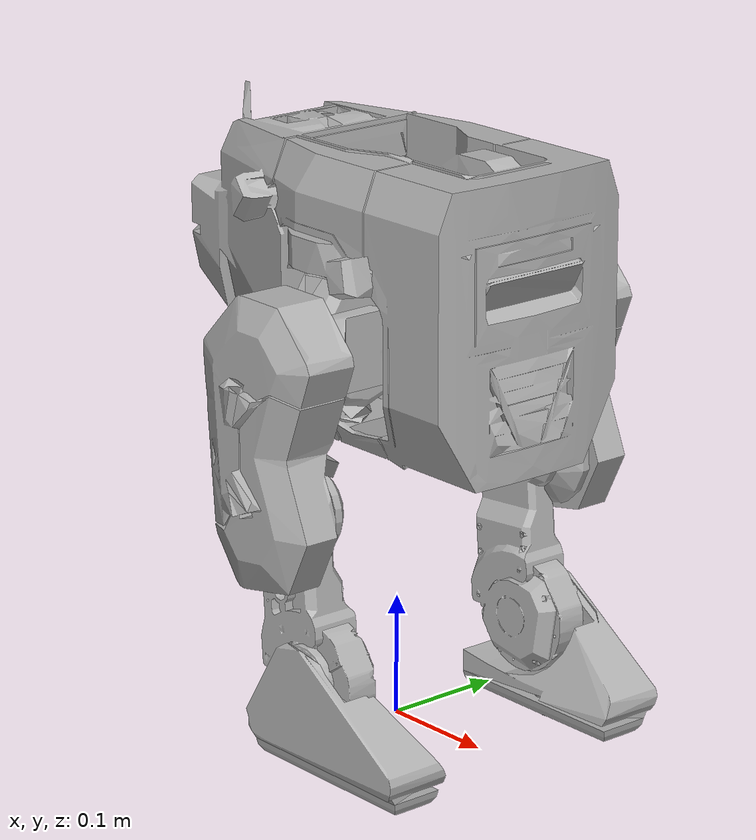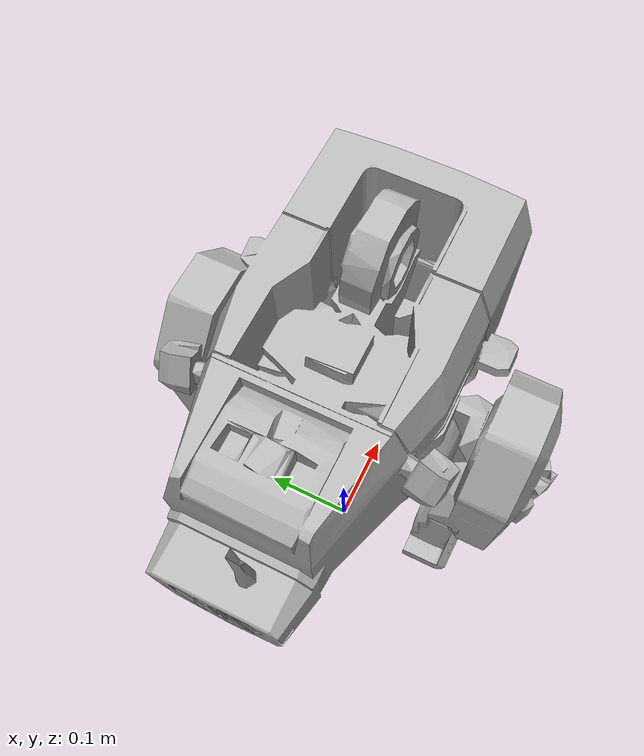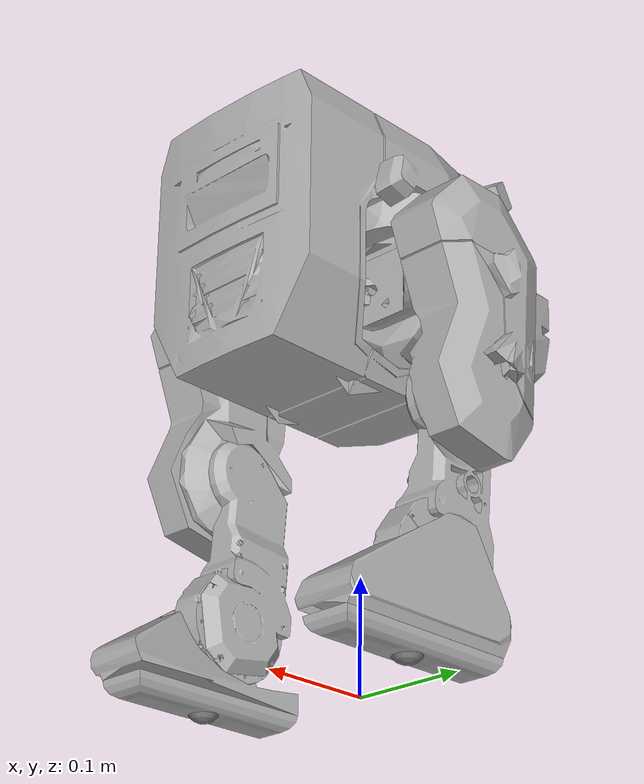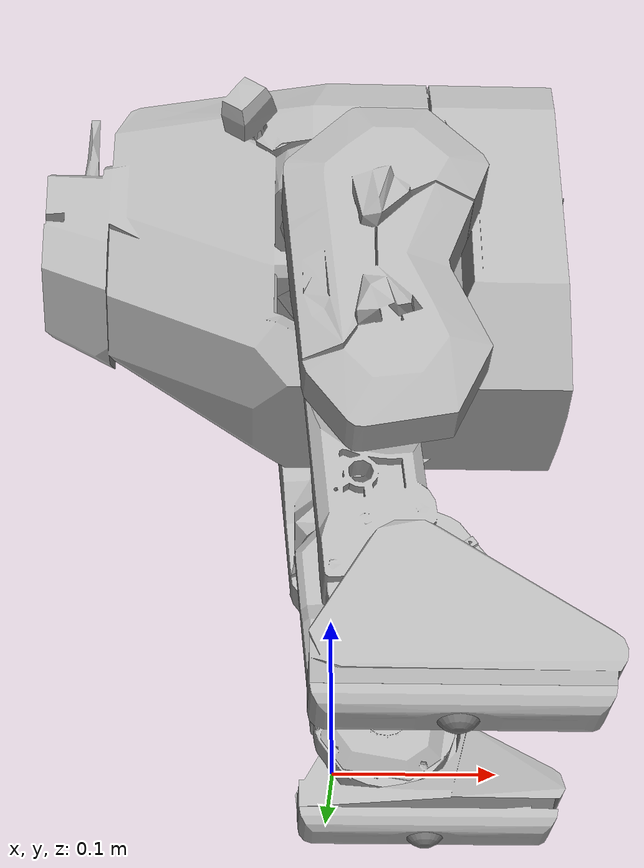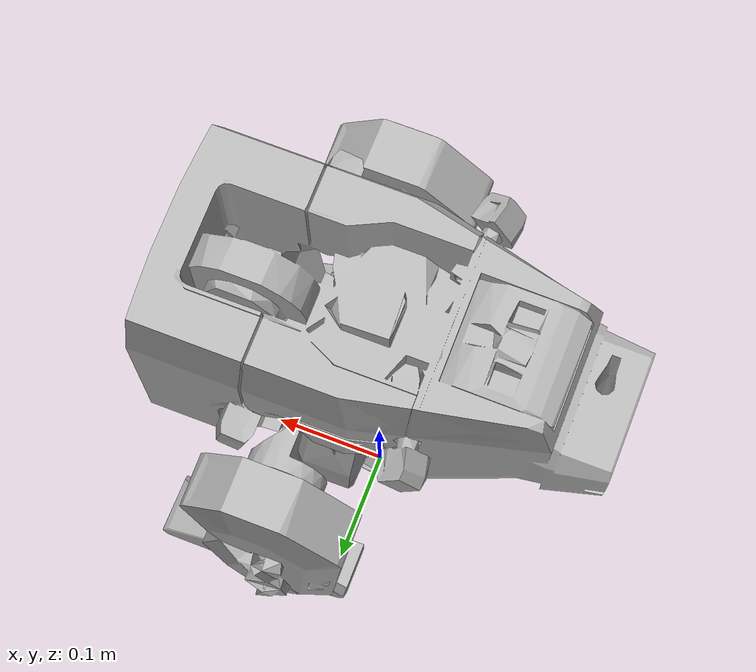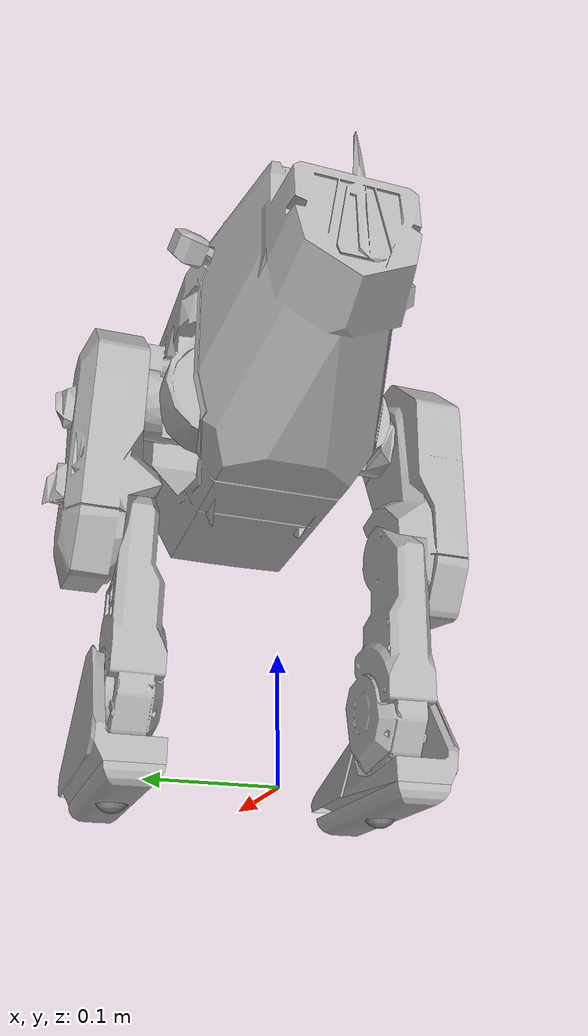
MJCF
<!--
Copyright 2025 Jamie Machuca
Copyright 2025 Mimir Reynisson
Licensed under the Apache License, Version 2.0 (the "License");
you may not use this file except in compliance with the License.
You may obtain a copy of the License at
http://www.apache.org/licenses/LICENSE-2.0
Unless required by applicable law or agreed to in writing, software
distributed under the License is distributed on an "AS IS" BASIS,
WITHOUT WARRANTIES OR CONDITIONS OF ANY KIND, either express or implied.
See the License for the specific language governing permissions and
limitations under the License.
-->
<mujoco model="brom_bdx">

  <!--
    VARIABLES:
      training:  disable all collisions except foot pad and ground
      pedestal:  place robot on pedestal to simplify early sim2real
      imu-noise: inject noise into imu data
  -->

  <option cone="elliptic" impratio="100"/>
  <compiler angle="radian" meshdir="assets" texturedir="assets" autolimits="true" eulerseq="zyx"/>

  <default>
    <default class="brom">
      <default class="go1">
        <joint type="hinge" damping="0.016" armature="0.0043" frictionloss="0.15" actuatorfrcrange="-100 100"/>
        <position inheritrange="1" kp="20" kv="1.2" forcerange="-23.7 23.7"/>
      </default>
      <default class="a1">
        <joint type="hinge" damping="0.023" armature="0.011" frictionloss="0.45" actuatorfrcrange="-100 100"/>
        <position inheritrange="1" kp="25" kv="1.2" forcerange="-33.5 33.5"/>
      </default>

      <default class="visualgeom">
        <geom material="visualgeom" density="0" group="0" contype="0" conaffinity="0"/>
      </default>
      <default class="collisiongeom">
        <geom group="1"/>
      </default>
      <equality solref="0.001 2"/>

    </default>
  </default>

  <asset>
    <material name="visualgeom" rgba="0.7 0.7 0.7 1" />
    <material name="collision_material" rgba="0.0 0.0 0.28 0.1" />
    <mesh name="body" file="body.stl" scale="0.001 0.001 0.001"/>
    <mesh name="left_foot" file="left_foot.stl" scale="0.001 0.001 0.001"/>
    <mesh name="left_lower_leg" file="left_lower_leg.stl" scale="0.001 0.001 0.001"/>
    <mesh name="left_upper_leg" file="left_upper_leg.stl" scale="0.001 0.001 0.001"/>
    <mesh name="left_hip" file="left_hip.stl" scale="0.001 0.001 0.001"/>
    <mesh name="left_hip_rotation" file="left_hip_rotation.stl" scale="0.001 0.001 0.001"/>
    <mesh name="left_foot_pad" file="left_foot_pad.stl" scale="0.001 0.001 0.001"/>
    <mesh name="right_foot_pad" file="right_foot_pad.stl" scale="0.001 0.001 0.001"/>
    <mesh name="right_foot" file="right_foot.stl" scale="0.001 0.001 0.001"/>
    <mesh name="right_lower_leg" file="right_lower_leg.stl" scale="0.001 0.001 0.001"/>
    <mesh name="right_upper_leg" file="right_upper_leg.stl" scale="0.001 0.001 0.001"/>
    <mesh name="right_hip_rotation" file="right_hip_rotation.stl" scale="0.001 0.001 0.001"/>
    <mesh name="right_hip" file="right_hip.stl" scale="0.001 0.001 0.001"/>
  </asset>

  <worldbody>
    <body name="root" pos="0 0 0.38" quat="1 0 0 0" childclass="brom">
      <freejoint name="root"/>

      <site name="imu" size="0.01" pos="0 0 0.05"/>
      <geom type="mesh" rgba="0.7 0.7 0.7 1" mesh="body" class="visualgeom"/>
      <geom type="mesh" rgba="0.7 0.7 0.7 1" mesh="body" class="collisiongeom"/>
      <inertial pos="-0.012 0.00011 -0.01349" quat="0.50583 0.49592 0.49592 0.50583" mass="3.674" diaginertia="0.04019 0.03434 0.02103"/>
      <body name="left_hip_rotation" pos="0 0.04661 0.0072">
        <joint name="left_hip_yaw" class="go1" pos="0 0 0" axis="0 0 -1" range="-0.5 0.29"/>
        <geom name="geom_left_hip_rotation" pos="0 -0.04661 -0.0072" type="mesh" rgba="0.7 0.7 0.7 1" mesh="left_hip_rotation"  class="visualgeom"/>
        <geom type="mesh" rgba="0.7 0.7 0.7 1" mesh="left_hip_rotation" pos="0 -0.04661 -0.0072" class="collisiongeom"/>
        <inertial pos="0.00350 0.00790 -0.05200" quat="1.00000 0.06700 -0.01800 0.00290" mass="0.689" diaginertia="0.00091 0.00063 0.00048"/>
        <body name="left_hip" pos="0.01127 0.004953 -0.059623">
          <joint name="left_hip_roll" class="a1" pos="0 0 0" axis="1 0 0" range="-0.628319 0.436332"/>
          <geom name="geom_left_hip" pos="-0.01127 -0.051563 0.052423" quat="1 0 0 0" type="mesh" rgba="0.7 0.7 0.7 1" mesh="left_hip" class="visualgeom"/>
          <geom type="mesh" rgba="0.7 0.7 0.7 1" mesh="left_hip" pos="-0.01127 -0.051563 0.052423" quat="1 0 0 0" class="collisiongeom"/>
          <inertial pos="0.01900 0.03500 -0.00028" quat="0.71000 0.71000 -0.00560 -0.02400" mass="0.049" diaginertia="0.00005 0.00005 0.00002"/>
          <body name="left_upper_leg" pos="0.019409 0.081888 0">
            <joint name="left_hip_pitch" class="a1" pos="0 0 0" axis="0 1 0" range="-2.05949 2.05949"/>
            <geom pos="-0.030679 -0.133451 0.052423" quat="1 0 0 0" type="mesh" rgba="0.7 0.7 0.7 1" mesh="left_upper_leg" class="visualgeom"/>
            <geom type="mesh" rgba="0.7 0.7 0.7 1" mesh="left_upper_leg" pos="-0.030679 -0.133451 0.052423" quat="1 0 0 0" class="collisiongeom"/>
            <inertial pos="-0.00410 0.01300 -0.05600" quat="0.71000 0.00940 0.00620 0.71000" mass="2.089" diaginertia="0.00870 0.00769 0.00218"/>
            <body name="left_lower_leg" pos="-0.000673 0 -0.118509">
              <joint name="left_knee" class="a1" pos="0 0 0" axis="0 1 0" range="-2.16 0"/>
              <geom pos="-0.030006 -0.133451 0.170932" quat="1 0 0 0" type="mesh" rgba="0.7 0.7 0.7 1" mesh="left_lower_leg" class="visualgeom"/>
              <geom type="mesh" rgba="0.7 0.7 0.7 1" mesh="left_lower_leg" pos="-0.030006 -0.133451 0.170932" quat="1 0 0 0" class="collisiongeom"/>
              <inertial pos="0.00073 -0.02400 -0.09300" quat="0.71000 -0.07600 -0.02600 0.70000" mass="0.62" diaginertia="0.00210 0.00182 0.00036"/>
              <body name="left_foot_cuboid" pos="0.010774 -0.009467 -0.136762">
                <joint name="left_ankle" class="go1" pos="0 0 0" axis="0 1 0" range="-1.23 1.48" />
                <geom pos="-0.04078 -0.123984 0.307694" quat="1 0 0 0" type="mesh" rgba="0.7 0.7 0.7 1" mesh="left_foot" class="visualgeom"/>
                <geom type="mesh" rgba="0.7 0.7 0.7 1" mesh="left_foot" pos="-0.04078 -0.123984 0.307694" quat="1 0 0 0" class="collisiongeom"/>
                <inertial pos="0.04100 -0.00015 -0.03658" quat="0.56198 0.46073 0.56808 0.39100" mass="0.173" diaginertia="0.00012 0.00010 0.00003"/>

                <!-- @START:!box_foot@ -->
               <body name="left_foot_pad" pos="0 0 0">
                  <geom pos="-0.04078 -0.123984 0.307694" quat="1 0 0 0" type="mesh" rgba="0.7 0.7 0.7 1" mesh="left_foot_pad"  density="0" group="1" name="left_foot_pad" contype="0" conaffinity="1" solimp="0.015 1 0.031" friction="0.8 0.02 0.01"/>
                  <geom type="mesh" rgba="0.7 0.7 0.7 1" mesh="left_foot_pad" pos="-0.04078 -0.123984 0.307694" quat="1 0 0 0" class="visualgeom"/>
                  <inertial pos="0.02600 -0.01500 -0.07100" quat="0.00000 0.71000 0.00000 0.71000" mass="0.1" diaginertia="0.00010 0.00010 0.00001"/>
                  <body name="left_foot" pos="0 0 -0.075">
                    <inertial pos="0 0 0" quat="1.0 0.0 0.0 0.0" mass="1e-9" diaginertia="0.0 0.0 0.0" />
                  </body>
                  <site name="left_foot" size="0.015" pos="0.025 -0.015 -0.07"/>
                </body>
                <!-- @END:!box_foot@ -->

              </body>
            </body>
          </body>
        </body>
      </body>
      <body name="right_hip_rotation" pos="-9e-06 -0.046484 0.0072">
        <joint name="right_hip_yaw" class="go1" pos="0 0 0" axis="0 0 -1" range="-0.29 0.5"/>
        <geom pos="9e-06 0.046484 -0.0072" quat="1 0 0 0" type="mesh" rgba="0.7 0.7 0.7 1" mesh="right_hip_rotation" class="visualgeom"/>
        <geom type="mesh" rgba="0.7 0.7 0.7 1" mesh="right_hip_rotation" pos="9e-06 0.046484 -0.0072" quat="1 0 0 0" class="collisiongeom"/>
        <inertial pos="0.00350 -0.00770 -0.05100" quat="1.00000 -0.06500 -0.01900 -0.00310" mass="0.689" diaginertia="0.00091 0.00063 0.00048"/>
        <body name="right_hip" pos="0.01127 -0.004952 -0.059623">
          <joint name="right_hip_roll" class="a1" pos="0 0 0" axis="1 0 0" range="-0.436332 0.628319"/>
          <geom pos="-0.011261 0.051436 0.052423" quat="1 0 0 0" type="mesh" rgba="0.7 0.7 0.7 1" mesh="right_hip" class="visualgeom"/>
          <geom type="mesh" rgba="0.7 0.7 0.7 1" mesh="right_hip" pos="-0.011261 0.051436 0.052423" quat="1 0 0 0" class="collisiongeom"/>
          <inertial pos="0.01900 -0.03500 -0.00029" quat="0.71000 0.71000 0.02300 0.00580" mass="0.049" diaginertia="0.00005 0.00005 0.00002"/>
          <body name="right_upper_leg" pos="0.01941 -0.081889 0">
            <joint name="right_hip_pitch" class="a1" pos="0 0 0" axis="0 -1 0" range="-2.05949 2.05949"/>
            <geom pos="-0.030671 0.133325 0.052423" quat="1 0 0 0" type="mesh" rgba="0.7 0.7 0.7 1" mesh="right_upper_leg" class="visualgeom"/>
            <geom type="mesh" rgba="0.7 0.7 0.7 1" mesh="right_upper_leg" pos="-0.030671 0.133325 0.052423" quat="1 0 0 0" class="collisiongeom"/>
            <inertial pos="-0.00410 -0.01300 -0.05600" quat="0.71000 0.00620 0.00940 0.71000" mass="2.089" diaginertia="0.00895 0.00791 0.00224"/>
            <body name="right_lower_leg" pos="-0.000674 0 -0.11851">
              <joint name="right_knee" class="a1" pos="0 0 0" axis="0 1 0" range="-2.16 0"/>
              <geom pos="-0.029997 0.133325 0.170933" quat="1 0 0 0" type="mesh" rgba="0.7 0.7 0.7 1" mesh="right_lower_leg" class="visualgeom"/>
              <geom type="mesh" rgba="0.7 0.7 0.7 1" mesh="right_lower_leg" pos="-0.029997 0.133325 0.170933" quat="1 0 0 0" class="collisiongeom"/>
              <inertial pos="0.00073 0.02400 -0.09300" quat="0.70000 -0.02600 -0.07600 0.71000" mass="0.62" diaginertia="0.00210 0.00182 0.00036"/>
              <body name="right_foot_cuboid" pos="0.010775 0.009467 -0.136761">
                <joint name="right_ankle" class="go1" pos="0 0 0" axis="0 -1 0" range="-1.48 1.23"/>
                <geom pos="-0.040772 0.123858 0.307694" quat="1 0 0 0" type="mesh" rgba="0.7 0.7 0.7 1" mesh="right_foot" class="visualgeom"/>
                <geom type="mesh" rgba="0.7 0.7 0.7 1" mesh="right_foot" pos="-0.040772 0.123858 0.307694" quat="1 0 0 0" class="collisiongeom"/>
                <inertial pos="0.04100 0.00015 -0.03658" quat="0.39100 0.56808 0.46073 0.56198" mass="0.173" diaginertia="0.00012 0.00010 0.00003"/>

                <!-- @START:!box_foot@ -->
                <body name="right_foot_pad" pos="0 0 0">
                  <geom pos="-0.040772 0.123858 0.307694" quat="1 0 0 0" type="mesh" rgba="0.7 0.7 0.7 1" mesh="right_foot_pad"  density="0" group="1" name="right_foot_pad" contype="0" conaffinity="1" solimp="0.015 1 0.031" friction="0.8 0.02 0.01"/>
                  <geom type="mesh" rgba="0.7 0.7 0.7 1" mesh="right_foot_pad" pos="-0.040772 0.123858 0.307694" quat="1 0 0 0" class="visualgeom"/>
                  <inertial pos="0.02600 0.01500 -0.07100" quat="0.71000 0.00000 0.71000 0.00000" mass="0.1" diaginertia="0.00010 0.00010 0.00001"/>
                  <body name="right_foot" pos="0 0 -0.075">
                    <inertial pos="0 0 0" quat="1.0 0.0 0.0 0.0" mass="1e-9" diaginertia="0.0 0.0 0.0" />
                  </body>
                  <site name="right_foot" size="0.015" pos="0.025 0.015 -0.07"/>
                </body>
                <!-- @END:!box_foot@ -->

              </body>
            </body>
          </body>
        </body>
      </body>
    </body>
  </worldbody>

  <actuator>
    <position name="left_hip_yaw" joint="left_hip_yaw" class="go1"/>
    <position name="left_hip_roll" joint="left_hip_roll" class="a1"/>
    <position name="left_hip_pitch" joint="left_hip_pitch" class="a1"/>
    <position name="left_knee" joint="left_knee" class="a1"/>
    <position name="left_ankle" joint="left_ankle" class="go1"/>
    <position name="right_hip_yaw" joint="right_hip_yaw" class="go1"/>
    <position name="right_hip_roll" joint="right_hip_roll" class="a1"/>
    <position name="right_hip_pitch" joint="right_hip_pitch" class="a1"/>
    <position name="right_knee" joint="right_knee" class="a1"/>
    <position name="right_ankle" joint="right_ankle" class="go1"/>
  </actuator>

  <contact>
    <exclude body1="left_hip_rotation" body2="root"/>
    <exclude body1="left_hip" body2="root"/>
    <exclude body1="right_hip_rotation" body2="root"/>
    <exclude body1="right_hip" body2="root"/>
  </contact>

  <sensor>
    <!-- @START:!imu-noise@ -->
    <gyro site="imu" name="gyro"/>
    <velocimeter site="imu" name="local_linvel"/>
    <accelerometer site="imu" name="accelerometer"/>
    <framepos objtype="site" objname="imu" name="position"/>
    <framezaxis objtype="site" objname="imu" name="upvector"/>
    <framexaxis objtype="site" objname="imu" name="forwardvector"/>
    <framelinvel objtype="site" objname="imu" name="global_linvel"/>
    <frameangvel objtype="site" objname="imu" name="global_angvel"/>
    <framequat objtype="site" objname="imu" name="orientation"/>
    <framelinvel objtype="site" objname="right_foot" name="right_foot_global_linvel"/>
    <framelinvel objtype="site" objname="left_foot" name="left_foot_global_linvel"/>
    <!-- @END:!imu-noise@ -->

  </sensor>
</mujoco>
